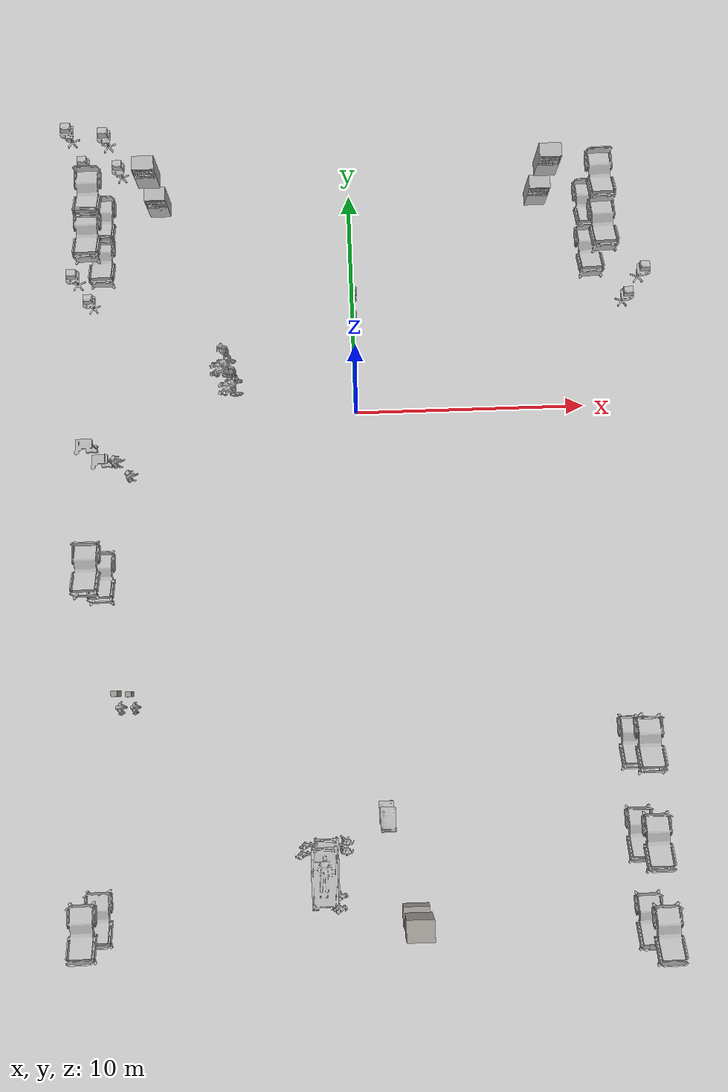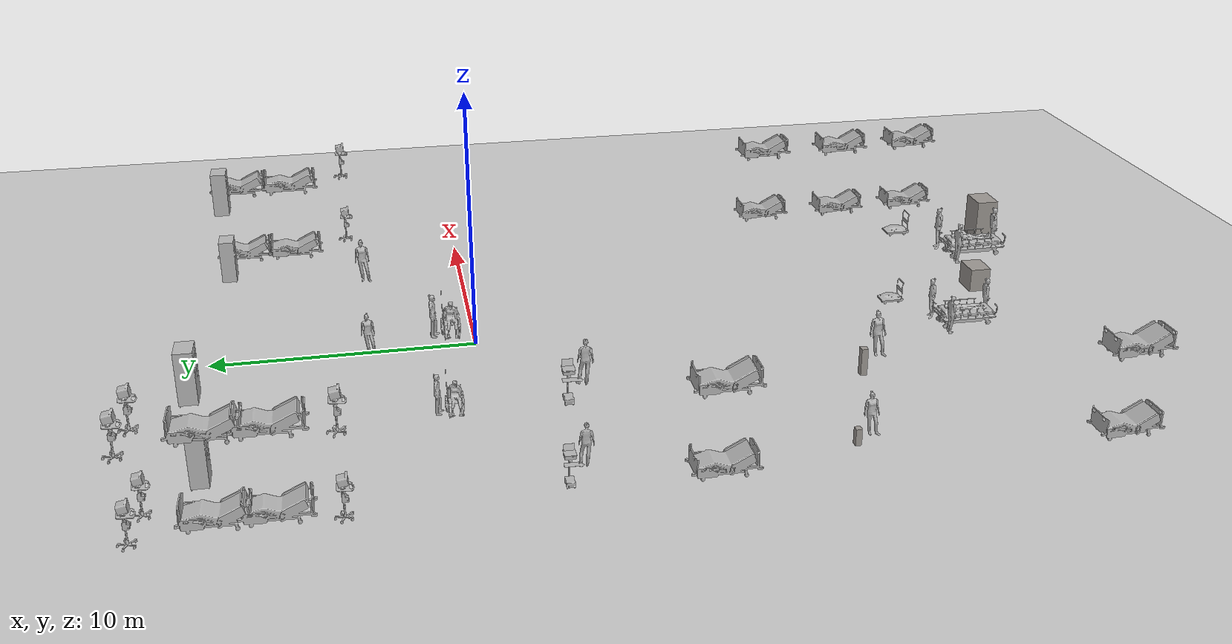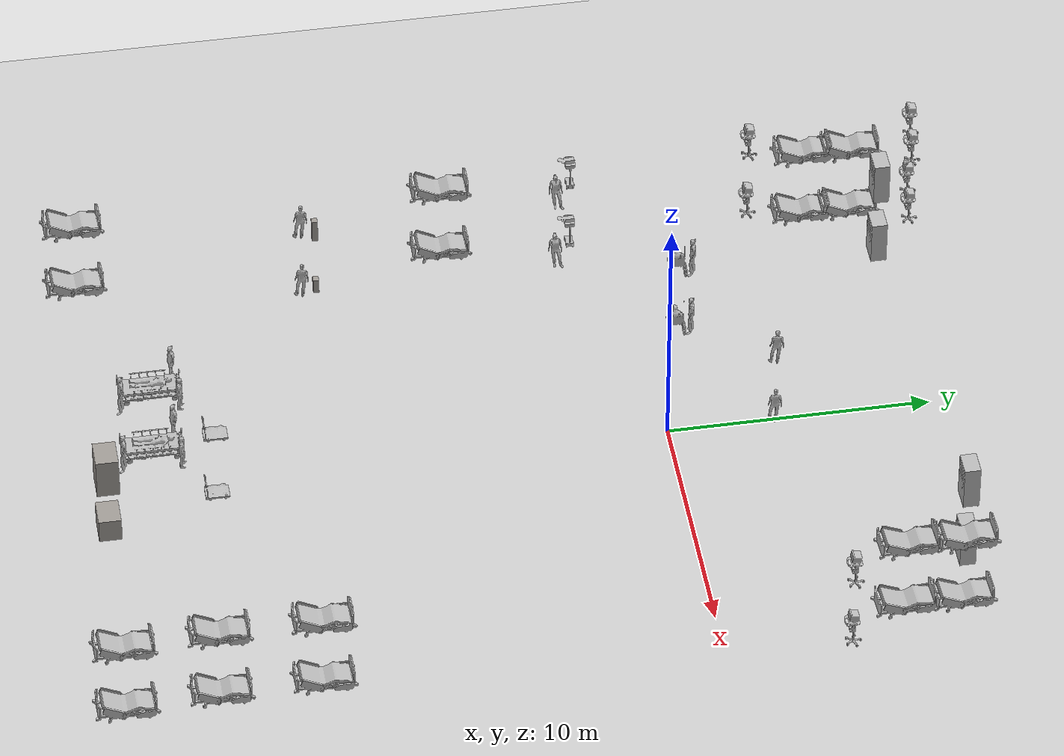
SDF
<sdf version="1.6">
 <world name="world">
  <plugin name="gazebo_ros_state" filename="libgazebo_ros_state.so">
   <ros><namespace>/gazebo</namespace></ros>
   <update_rate>1.0</update_rate>
  </plugin>
  <gravity>0 0 -9.8</gravity>
  <physics default="0" name="default_physics" type="ode">
   <max_step_size>0.001</max_step_size>
   <real_time_factor>1</real_time_factor>
   <real_time_update_rate>1000</real_time_update_rate>
  </physics>
  <scene><ambient>0.6 0.6 0.6 1</ambient><background>0.4 0.4 0.4 1</background><shadows>false</shadows></scene>
  <include><uri>model://sun</uri></include>
  <include><uri>model://ground_plane</uri><pose>0 0 -0.1 0 -0 0</pose></include>
  <light name="user_spot_light_0" type="spot">
   <pose>0 5.6 2.24 0 -0 0</pose>
   <diffuse>0.5 0.5 0.5 1</diffuse>
   <specular>0.1 0.1 0.1 1</specular>
   <direction>0 0 -1</direction>
   <attenuation>
    <range>200</range>
    <constant>0</constant>
    <linear>0.5</linear>
    <quadratic>0</quadratic>
   </attenuation>
   <cast_shadows>0</cast_shadows>
   <spot><inner_angle>3.1</inner_angle><outer_angle>3.2</outer_angle><falloff>1</falloff></spot>
  </light>
  <light name="user_spot_light_0_clone" type="spot">
   <pose>0 5.6 5.24 0 -0 0</pose>
   <diffuse>0.5 0.5 0.5 1</diffuse>
   <specular>0.1 0.1 0.1 1</specular>
   <direction>0 0 -1</direction>
   <attenuation>
    <range>200</range>
    <constant>0</constant>
    <linear>0.5</linear>
    <quadratic>0</quadratic>
   </attenuation>
   <cast_shadows>0</cast_shadows>
   <spot><inner_angle>3.1</inner_angle><outer_angle>3.2</outer_angle><falloff>1</falloff></spot>
  </light>
  <model name="CGMClassic_1">
   <include>
    <uri>model://CGMClassic</uri>
    <static>true</static>
    <pose>11.1777 -18.4129 0 0 0 -3.13719</pose>
   </include>
  </model>
  <model name="CGMClassic_2">
   <include>
    <uri>model://CGMClassic</uri>
    <static>true</static>
    <pose>11.1179 -14.6493 0 0 0 -3.13599</pose>
   </include>
  </model>
  <model name="Scrubs_1">
   <include><uri>model://Scrubs</uri><static>true</static><pose>-9.61916 -12.5112 0 0 0 -3.12353</pose></include>
  </model>
  <model name="Scrubs_2">
   <include><uri>model://Scrubs</uri><static>true</static><pose>0.054597 4.05849 0 0 -0 3.12413</pose></include>
  </model>
  <model name="PatientWheelChair_1">
   <include>
    <uri>model://PatientWheelChair</uri>
    <static>true</static>
    <pose>-5.46091 1.23577 0 0 0 -1.54828</pose>
   </include>
  </model>
  <model name="Scrubs_3">
   <include><uri>model://Scrubs</uri><static>true</static><pose>-5.38513 1.82526 0 0 0 -1.63757</pose></include>
  </model>
  <model name="CGMClassic_3">
   <include>
    <uri>model://CGMClassic</uri>
    <static>true</static>
    <pose>-11.2304 -21.1134 0 0 0 -3.11834</pose>
   </include>
  </model>
  <model name="CGMClassic_4">
   <include>
    <uri>model://CGMClassic</uri>
    <static>true</static>
    <pose>-11.0878 -7.00992 0 0 -0 3.1351</pose>
   </include>
  </model>
  <model name="CGMClassic_5">
   <include>
    <uri>model://CGMClassic</uri>
    <static>true</static>
    <pose>-11.0106 8.9505 -0.008203 -0.035019 -0.000392 3.13388</pose>
   </include>
  </model>
  <model name="CGMClassic_6">
   <include>
    <uri>model://CGMClassic</uri>
    <static>true</static>
    <pose>-11.025 7.10335 0 -0.035021 1.8e-05 -3.13762</pose>
   </include>
  </model>
  <model name="TrolleyBedPatient_1">
   <include>
    <uri>model://TrolleyBedPatient</uri>
    <static>true</static>
    <pose>-1.83202 -19.2612 0 0 -0 0</pose>
   </include>
  </model>
  <model name="Scrubs_4">
   <include><uri>model://Scrubs</uri><static>true</static><pose>-0.93616 -18.2252 0 0 -0 1.62572</pose></include>
  </model>
  <model name="Scrubs_5">
   <include>
    <uri>model://Scrubs</uri>
    <static>true</static>
    <pose>-2.66657 -18.3733 0 -0.002221 -0.006608 -1.24025</pose>
   </include>
  </model>
  <model name="CGMClassic_7">
   <include>
    <uri>model://CGMClassic</uri>
    <static>true</static>
    <pose>10.6166 9.06291 -0.008203 -0.03501 0.000885 -3.11285</pose>
   </include>
  </model>
  <model name="CGMClassic_8">
   <include>
    <uri>model://CGMClassic</uri>
    <static>true</static>
    <pose>10.6006 6.90956 -0.008203 -0.035003 0.001133 -3.10576</pose>
   </include>
  </model>
  <model name="ParkingTrolleyMin_1">
   <include>
    <uri>model://ParkingTrolleyMin</uri>
    <static>true</static>
    <pose>0.715846 -17.1496 -0.000121 -1e-06 -0 0</pose>
   </include>
  </model>
  <model name="Scrubs_6">
   <include><uri>model://Scrubs</uri><static>true</static><pose>-1.29468 -20.4093 0 0 0 -1.51066</pose></include>
  </model>
  <model name="CGMClassic_9">
   <include>
    <uri>model://CGMClassic</uri>
    <static>true</static>
    <pose>11.3613 -21.8867 0 0 0 -3.12292</pose>
   </include>
  </model>
  <model name="XRayMachine_1">
   <include><uri>model://XRayMachine</uri><static>true</static><pose>1.79424 -21.3329 0 0 -0 0</pose></include>
  </model>
  <model name="BloodPressureMonitor_1">
   <include>
    <uri>model://BloodPressureMonitor</uri>
    <static>true</static>
    <pose>-9.96258 -11.9361 0 0 -0 0</pose>
   </include>
  </model>
  <model name="BMWCart_1">
   <include><uri>model://BMWCart</uri><static>true</static><pose>-10.931 -1.9483 0 0 -0 0</pose></include>
  </model>
  <model name="Scrubs_7">
   <include><uri>model://Scrubs</uri><static>true</static><pose>-9.75875 -2.67552 0 0 -0 0</pose></include>
  </model>
  <model name="BPCart_1">
   <include>
    <uri>model://BPCart</uri>
    <static>true</static>
    <pose>-10.1788 11.173 0.003446 1e-06 -0 0.003096</pose>
   </include>
  </model>
  <model name="BPCart_2">
   <include><uri>model://BPCart</uri><static>true</static><pose>12.0072 4.64765 0 0 -0 0</pose></include>
  </model>
  <model name="BPCart_3">
   <include><uri>model://BPCart</uri><static>true</static><pose>-11.7236 11.4294 0 0 -0 0</pose></include>
  </model>
  <model name="BPCart_4">
   <include>
    <uri>model://BPCart</uri>
    <static>true</static>
    <pose>-11.4703 5.05999 0.003446 1e-06 -0 0.003096</pose>
   </include>
  </model>
  <model name="VendingMachine_1">
   <include>
    <uri>model://VendingMachine</uri>
    <static>true</static>
    <pose>-8.45694 9.63064 0 0 -0 0</pose>
   </include>
  </model>
  <model name="VendingMachine_2">
   <include>
    <uri>model://VendingMachine</uri>
    <static>true</static>
    <pose>8.35378 9.64852 -3e-06 -6e-06 0 0</pose>
   </include>
  </model>
  <model name="floor_1_CGMClassic_1">
   <include>
    <uri>model://CGMClassic</uri>
    <static>true</static>
    <pose>11.1777 -18.4129 3.0 0 0 -3.13719</pose>
   </include>
  </model>
  <model name="floor_1_CGMClassic_2">
   <include>
    <uri>model://CGMClassic</uri>
    <static>true</static>
    <pose>11.1179 -14.6493 3.0 0 0 -3.13599</pose>
   </include>
  </model>
  <model name="floor_1_Scrubs_1">
   <include>
    <uri>model://Scrubs</uri>
    <static>true</static>
    <pose>-9.61916 -12.5112 3.0 0 0 -3.12353</pose>
   </include>
  </model>
  <model name="floor_1_Scrubs_2">
   <include>
    <uri>model://Scrubs</uri>
    <static>true</static>
    <pose>0.054597 4.05849 3.0 0 -0 3.12413</pose>
   </include>
  </model>
  <model name="floor_1_PatientWheelChair_1">
   <include>
    <uri>model://PatientWheelChair</uri>
    <static>true</static>
    <pose>-5.46091 1.23577 3.0 0 0 -1.54828</pose>
   </include>
  </model>
  <model name="floor_1_Scrubs_3">
   <include>
    <uri>model://Scrubs</uri>
    <static>true</static>
    <pose>-5.38513 1.82526 3.0 0 0 -1.63757</pose>
   </include>
  </model>
  <model name="floor_1_CGMClassic_3">
   <include>
    <uri>model://CGMClassic</uri>
    <static>true</static>
    <pose>-11.2304 -21.1134 3.0 0 0 -3.11834</pose>
   </include>
  </model>
  <model name="floor_1_CGMClassic_4">
   <include>
    <uri>model://CGMClassic</uri>
    <static>true</static>
    <pose>-11.0878 -7.00992 3.0 0 -0 3.1351</pose>
   </include>
  </model>
  <model name="floor_1_CGMClassic_5">
   <include>
    <uri>model://CGMClassic</uri>
    <static>true</static>
    <pose>-11.0106 8.9505 2.991797 -0.035019 -0.000392 3.13388</pose>
   </include>
  </model>
  <model name="floor_1_CGMClassic_6">
   <include>
    <uri>model://CGMClassic</uri>
    <static>true</static>
    <pose>-11.025 7.10335 3.0 -0.035021 1.8e-05 -3.13762</pose>
   </include>
  </model>
  <model name="floor_1_TrolleyBedPatient_1">
   <include>
    <uri>model://TrolleyBedPatient</uri>
    <static>true</static>
    <pose>-1.83202 -19.2612 3.0 0 -0 0</pose>
   </include>
  </model>
  <model name="floor_1_Scrubs_4">
   <include>
    <uri>model://Scrubs</uri>
    <static>true</static>
    <pose>-0.93616 -18.2252 3.0 0 -0 1.62572</pose>
   </include>
  </model>
  <model name="floor_1_Scrubs_5">
   <include>
    <uri>model://Scrubs</uri>
    <static>true</static>
    <pose>-2.66657 -18.3733 3.0 -0.002221 -0.006608 -1.24025</pose>
   </include>
  </model>
  <model name="floor_1_CGMClassic_7">
   <include>
    <uri>model://CGMClassic</uri>
    <static>true</static>
    <pose>10.6166 9.06291 2.991797 -0.03501 0.000885 -3.11285</pose>
   </include>
  </model>
  <model name="floor_1_CGMClassic_8">
   <include>
    <uri>model://CGMClassic</uri>
    <static>true</static>
    <pose>10.6006 6.90956 2.991797 -0.035003 0.001133 -3.10576</pose>
   </include>
  </model>
  <model name="floor_1_ParkingTrolleyMin_1">
   <include>
    <uri>model://ParkingTrolleyMin</uri>
    <static>true</static>
    <pose>0.715846 -17.1496 2.999879 -1e-06 -0 0</pose>
   </include>
  </model>
  <model name="floor_1_Scrubs_6">
   <include>
    <uri>model://Scrubs</uri>
    <static>true</static>
    <pose>-1.29468 -20.4093 3.0 0 0 -1.51066</pose>
   </include>
  </model>
  <model name="floor_1_CGMClassic_9">
   <include>
    <uri>model://CGMClassic</uri>
    <static>true</static>
    <pose>11.3613 -21.8867 3.0 0 0 -3.12292</pose>
   </include>
  </model>
  <model name="floor_1_XRayMachine_1">
   <include><uri>model://XRayMachine</uri><static>true</static><pose>1.79424 -21.3329 3.0 0 -0 0</pose></include>
  </model>
  <model name="floor_1_BloodPressureMonitor_1">
   <include>
    <uri>model://BloodPressureMonitor</uri>
    <static>true</static>
    <pose>-9.96258 -11.9361 3.0 0 -0 0</pose>
   </include>
  </model>
  <model name="floor_1_BMWCart_1">
   <include><uri>model://BMWCart</uri><static>true</static><pose>-10.931 -1.9483 3.0 0 -0 0</pose></include>
  </model>
  <model name="floor_1_Scrubs_7">
   <include><uri>model://Scrubs</uri><static>true</static><pose>-9.75875 -2.67552 3.0 0 -0 0</pose></include>
  </model>
  <model name="floor_1_BPCart_1">
   <include>
    <uri>model://BPCart</uri>
    <static>true</static>
    <pose>-10.1788 11.173 3.003446 1e-06 -0 0.003096</pose>
   </include>
  </model>
  <model name="floor_1_BPCart_2">
   <include><uri>model://BPCart</uri><static>true</static><pose>12.0072 4.64765 3.0 0 -0 0</pose></include>
  </model>
  <model name="floor_1_BPCart_3">
   <include><uri>model://BPCart</uri><static>true</static><pose>-11.7236 11.4294 3.0 0 -0 0</pose></include>
  </model>
  <model name="floor_1_BPCart_4">
   <include>
    <uri>model://BPCart</uri>
    <static>true</static>
    <pose>-11.4703 5.05999 3.003446 1e-06 -0 0.003096</pose>
   </include>
  </model>
  <model name="floor_1_VendingMachine_1">
   <include>
    <uri>model://VendingMachine</uri>
    <static>true</static>
    <pose>-8.45694 9.63064 3.0 0 -0 0</pose>
   </include>
  </model>
  <model name="floor_1_VendingMachine_2">
   <include>
    <uri>model://VendingMachine</uri>
    <static>true</static>
    <pose>8.35378 9.64852 2.999997 -6e-06 0 0</pose>
   </include>
  </model>
 </world>
</sdf>

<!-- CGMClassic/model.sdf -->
<sdf version="1.6">
  <model name="CGMClassic">
   <static>true</static>
    <link name="body">
      <pose>0 0 0 0 0 0</pose>

      <visual name="visual">
        <geometry>
          <mesh>
            <uri>model://CGMClassic/meshes/CGMClassic.obj</uri>
            <scale>0.01 0.01 0.01</scale>
          </mesh>
        </geometry>
      </visual>

      <collision name="collision">
        <geometry>
          <mesh>
            <uri>model://CGMClassic/meshes/CGMClassic.obj</uri>
            <scale>0.01 0.01 0.01</scale>
          </mesh>
        </geometry>
      </collision>

    </link>
  </model>
</sdf>

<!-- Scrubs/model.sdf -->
<sdf version="1.6">
  <model name='Scrubs'>
   <static>true</static>
    <link name="body">
      <pose>0 0 0 0 0 0</pose>

      <visual name="visual">
        <geometry>
          <mesh>
            <uri>model://Scrubs/meshes/scrubs.obj</uri>
          </mesh>
        </geometry>
      </visual>

      <collision name="collision">
        <geometry>
          <mesh>
            <uri>model://Scrubs/meshes/Scrubs_Col.obj</uri>
          </mesh>
        </geometry>
      </collision>

    </link>
  </model>
</sdf>

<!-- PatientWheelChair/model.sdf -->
<sdf version="1.6">
  <model name="PatientWheelChair">
   <static>true</static>
    <link name="body">
      <pose>0 0 0 0 0 0</pose>

      <visual name="visual">
        <geometry>
          <mesh>
            <uri>model://PatientWheelChair/meshes/PatientWheelChair.obj</uri>
          </mesh>
        </geometry>
      </visual>

      <collision name="collision">
        <geometry>
          <mesh>
            <uri>model://PatientWheelChair/meshes/PatientWheelChair_Col.obj</uri>
          </mesh>
        </geometry>
      </collision>

    </link>
  </model>
</sdf>

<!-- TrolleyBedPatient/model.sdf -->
<sdf version="1.6">
  <model name="TrolleyBedPatient">
   <static>true</static>
    <link name="body">
      <pose>0 0 0 0 0 0</pose>

      <visual name="visual">
        <geometry>
          <mesh>
            <uri>model://TrolleyBedPatient/meshes/TrolleyBedPatient.obj</uri>
          </mesh>
        </geometry>
      </visual>

      <collision name="collision">
        <geometry>
          <mesh>
            <uri>model://TrolleyBedPatient/meshes/TrolleyBedPatient.obj</uri>
          </mesh>
        </geometry>
      </collision>

    </link>
  </model>
</sdf>

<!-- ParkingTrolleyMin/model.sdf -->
<sdf version="1.6">
  <model name="ParkingTrolleyMin">
    <link name="body">
      <pose>0 0 0 0 0 0</pose>

        <visual name="visual">
          <pose>0 0 0 0 0 0</pose>
          <geometry>
            <mesh><uri>model://ParkingTrolleyMin/meshes/trolleymin.obj</uri></mesh>
          </geometry>
        </visual>

        <collision name="collision">
          <pose>0 0 0 0 0 0</pose>
          <geometry>
            <mesh><uri>model://ParkingTrolleyMin/meshes/trolleymin.obj</uri></mesh>
          </geometry>
        </collision>

    </link>
  </model>
</sdf>

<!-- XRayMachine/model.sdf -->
<sdf version="1.6">
  <model name="XRayMachine">
    <static>true</static>
    <link name="link">
      <collision name="col">
        <geometry>
          <box>
            <size>1.1 0.85 1.65</size>
          </box>
        </geometry>
      </collision>
      <visual name="vis">
        <geometry>
          <box>
            <size>1.1 0.85 1.65</size>
          </box>
        </geometry>
        <material>
          <ambient>0.62 0.6 0.58 1</ambient>
          <diffuse>0.62 0.6 0.58 1</diffuse>
        </material>
      </visual>
    </link>
  </model>
</sdf>

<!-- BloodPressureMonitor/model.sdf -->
<sdf version="1.6">
  <model name="BloodPressureMonitor">
    <static>true</static>
    <link name="link">
      <collision name="col">
        <geometry>
          <box>
            <size>0.25 0.22 0.95</size>
          </box>
        </geometry>
      </collision>
      <visual name="vis">
        <geometry>
          <box>
            <size>0.25 0.22 0.95</size>
          </box>
        </geometry>
        <material>
          <ambient>0.62 0.6 0.58 1</ambient>
          <diffuse>0.62 0.6 0.58 1</diffuse>
        </material>
      </visual>
    </link>
  </model>
</sdf>

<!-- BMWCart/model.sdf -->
<sdf version="1.6">
  <model name='BMWCart'>
    <link name="body">
      <pose>0 0 0 0 0 0</pose>

      <visual name="visual">
        <geometry>
          <mesh>
            <uri>model://BMWCart/meshes/Cart_BMW.obj</uri>
          </mesh>
        </geometry>
      </visual>

      <collision name="collision">
        <geometry>
          <mesh>
            <uri>model://BMWCart/meshes/Cart_BMW_Col.obj</uri>
          </mesh>
        </geometry>
      </collision>

    </link>
  </model>
</sdf>

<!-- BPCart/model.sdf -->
<sdf version="1.6">
  <model name='BPCart'>
    <link name="body">
      <pose>0 0 0 0 0 0</pose>

      <visual name="visual">
        <geometry>
          <mesh>
            <uri>model://BPCart/meshes/Cart_BP.obj</uri>
          </mesh>
        </geometry>
      </visual>

      <collision name="collision">
        <geometry>
          <mesh>
            <uri>model://BPCart/meshes/Cart_BP_Col.obj</uri>
          </mesh>
        </geometry>
      </collision>

    </link>
  </model>
</sdf>

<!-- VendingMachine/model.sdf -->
<sdf version="1.6">
  <model name="VendingMachine">
    <link name="body">
      <pose>0 0 0 0 0 0</pose>

      <visual name="visual">
        <geometry>
          <mesh>
            <uri>model://VendingMachine/meshes/vend.obj</uri>
          </mesh>
        </geometry>
      </visual>

      <collision name="collision">
        <geometry>
          <mesh>
            <uri>model://VendingMachine/meshes/vend.obj</uri>
          </mesh>
        </geometry>
      </collision>

    </link>
  </model>
</sdf>
